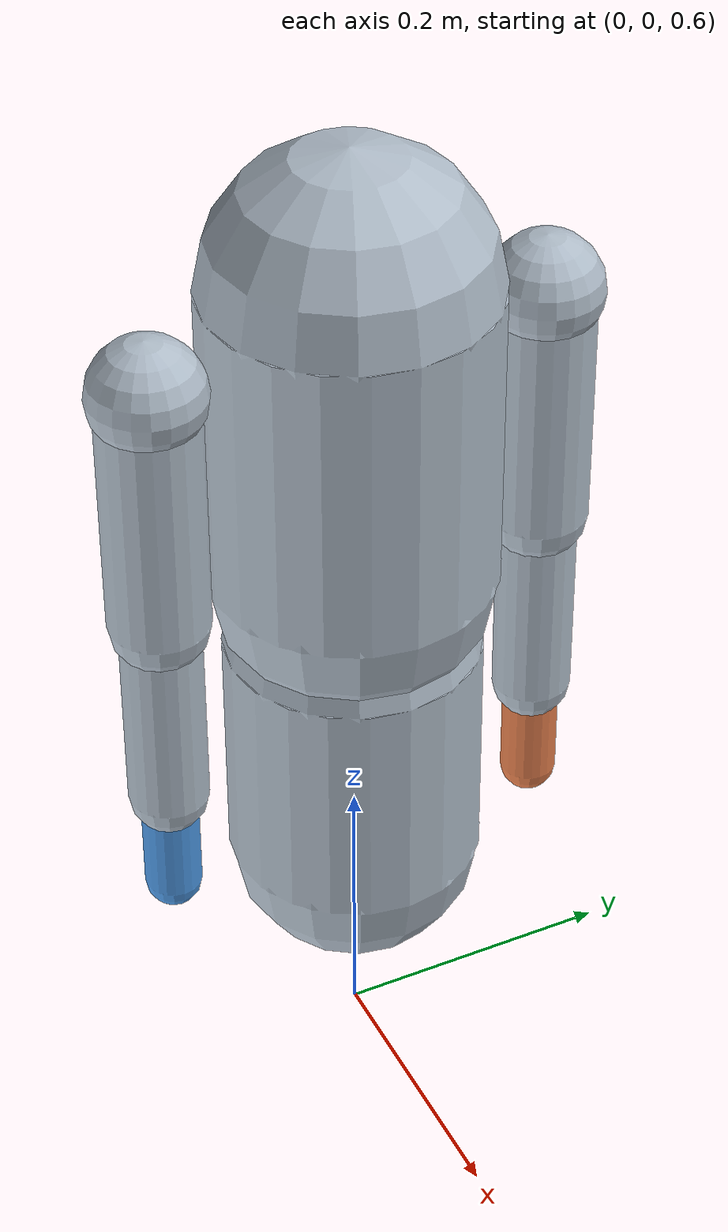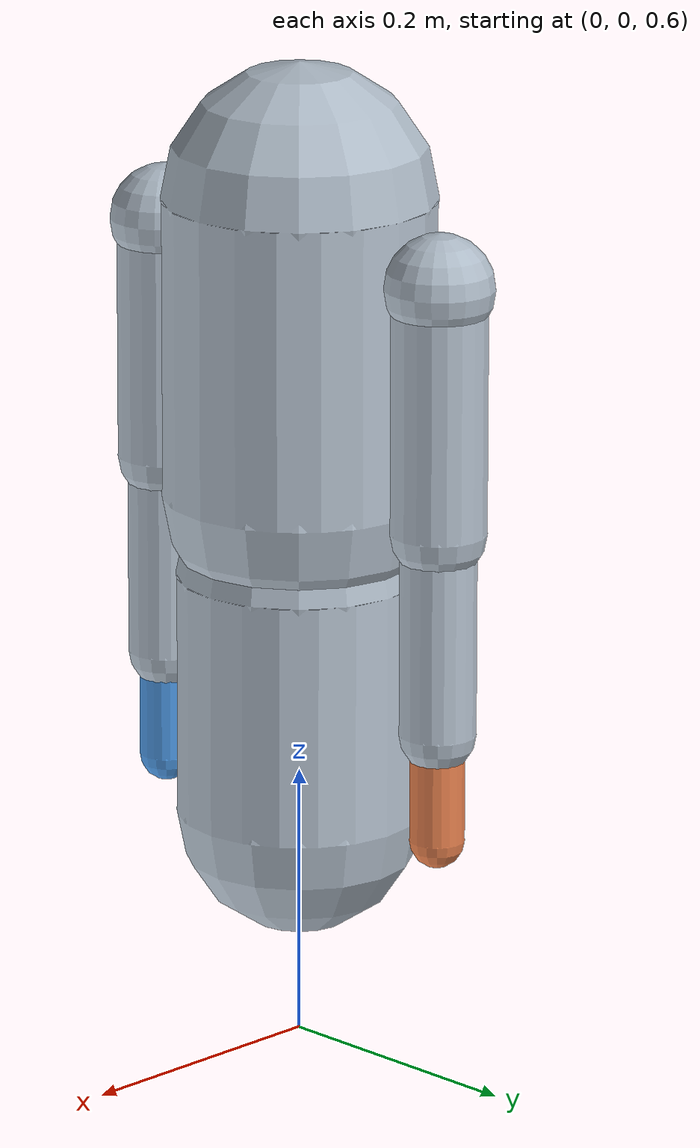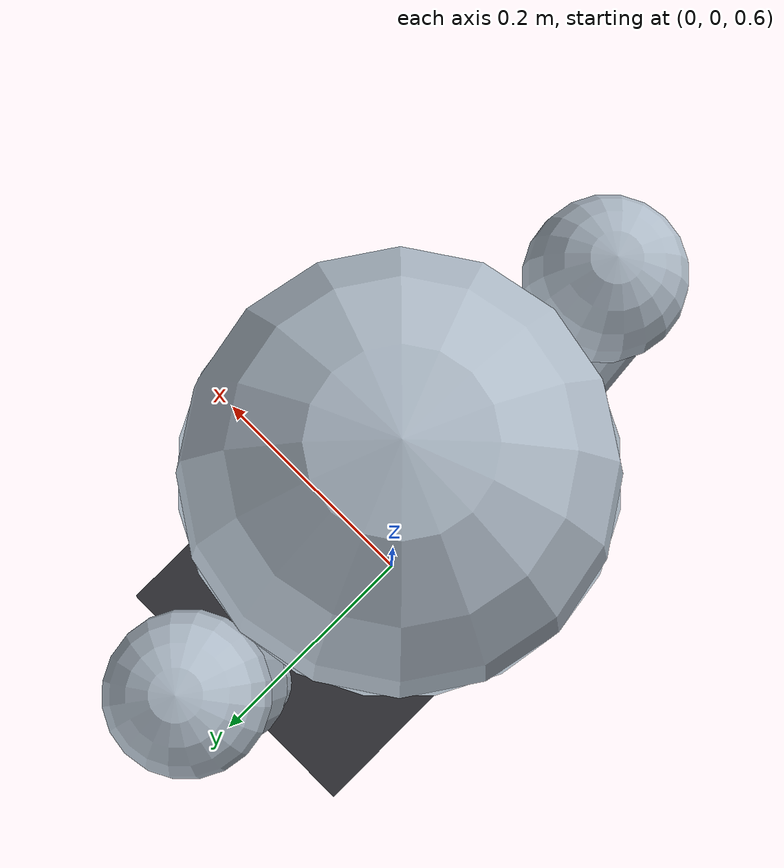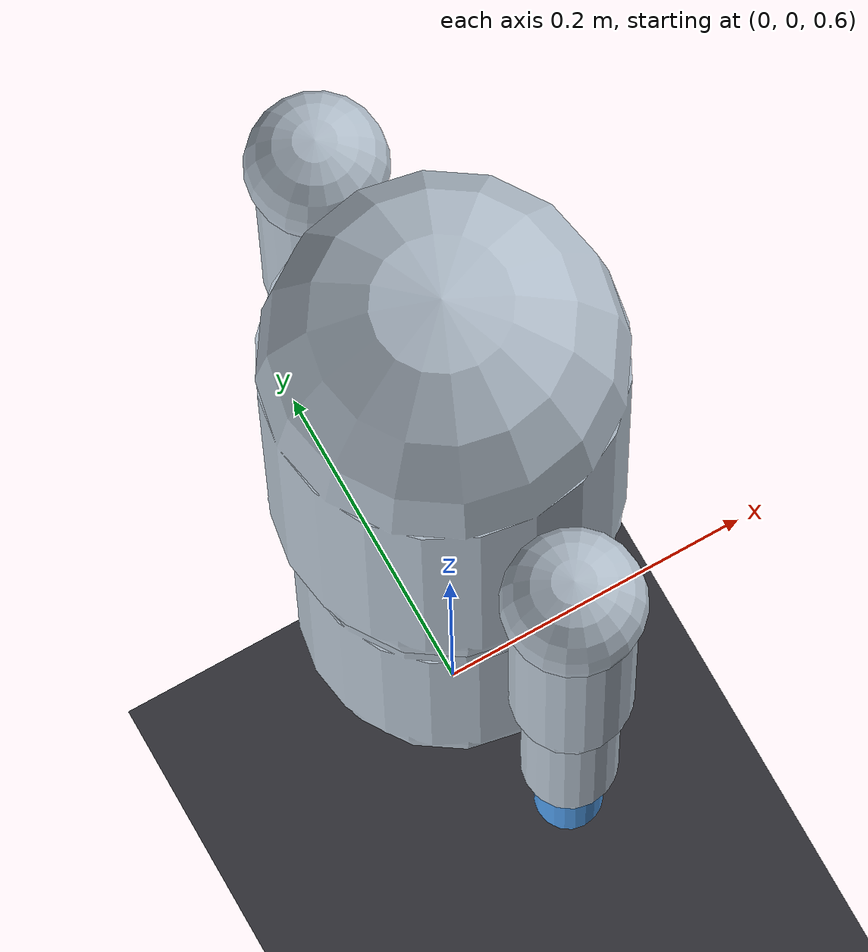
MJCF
<mujoco model="g1_upper_body_puppet">
  <compiler angle="radian" autolimits="true" inertiafromgeom="true"/>
  <option timestep="0.02" gravity="0 0 0" iterations="20"/>
  <visual>
    <headlight ambient="0.4 0.4 0.4" diffuse="0.6 0.6 0.6"/>
  </visual>
  <default>
    <joint limited="true" damping="8" armature="0.01"/>
    <geom contype="0" conaffinity="0" rgba="0.7 0.75 0.8 1" density="800"/>
  </default>
  <!-- q=0 matches Unitree G1 rest: arms hanging down (-Z), not T-pose. -->
  <worldbody>
    <light pos="0 0 2" dir="0 0 -1"/>
    <geom name="floor" type="plane" size="1 1 0.1" rgba="0.2 0.2 0.22 1" pos="0 0 0"/>
    <body name="pelvis" pos="0 0 0.85">
      <geom type="capsule" fromto="0 0 -0.08 0 0 0.10" size="0.09"/>
      <body name="waist_yaw_link">
        <joint name="waist_yaw_joint" type="hinge" axis="0 0 1" range="-1.2 1.2"/>
        <geom type="capsule" fromto="0 0 0 0 0 0.16" size="0.08"/>
        <body name="torso" pos="0 0 0.16">
          <geom type="capsule" fromto="0 0 0 0 0 0.22" size="0.10"/>
          <!-- left arm: +Y, hangs down at q=0 -->
          <body name="left_shoulder_pitch_link" pos="0 0.14 0.18">
            <joint name="left_shoulder_pitch_joint" type="hinge" axis="0 1 0" range="-3.0 2.6"/>
            <geom type="sphere" size="0.04"/>
            <body name="left_shoulder_roll_link">
              <joint name="left_shoulder_roll_joint" type="hinge" axis="1 0 0" range="-0.3 2.3"/>
              <geom type="sphere" size="0.018"/>
              <body name="left_shoulder_yaw_link">
                <joint name="left_shoulder_yaw_joint" type="hinge" axis="0 0 1" range="-2.6 2.6"/>
                <geom type="sphere" size="0.016"/>
                <geom type="capsule" fromto="0 0 0 0 0 -0.18" size="0.035"/>
                <body name="left_elbow_link" pos="0 0 -0.18">
                  <joint name="left_elbow_joint" type="hinge" axis="0 1 0" range="-1.05 2.1"/>
                  <geom type="sphere" size="0.022"/>
                  <geom type="capsule" fromto="0 0 0 0 0 -0.15" size="0.028"/>
                  <body name="left_wrist_roll_link" pos="0 0 -0.15">
                    <joint name="left_wrist_roll_joint" type="hinge" axis="0 0 1" range="-1.97 1.97"/>
                    <geom type="sphere" size="0.014"/>
                    <body name="left_wrist_pitch_link">
                      <joint name="left_wrist_pitch_joint" type="hinge" axis="0 1 0" range="-1.61 1.61"/>
                      <geom type="sphere" size="0.012"/>
                      <body name="left_wrist_yaw_link">
                        <joint name="left_wrist_yaw_joint" type="hinge" axis="1 0 0" range="-1.61 1.61"/>
                        <geom type="capsule" fromto="0 0 0 0 0 -0.08" size="0.020" rgba="0.9 0.5 0.3 1"/>
                      </body>
                    </body>
                  </body>
                </body>
              </body>
            </body>
          </body>
          <!-- right arm: -Y, hangs down at q=0 -->
          <body name="right_shoulder_pitch_link" pos="0 -0.14 0.18">
            <joint name="right_shoulder_pitch_joint" type="hinge" axis="0 1 0" range="-3.0 2.6"/>
            <geom type="sphere" size="0.04"/>
            <body name="right_shoulder_roll_link">
              <joint name="right_shoulder_roll_joint" type="hinge" axis="1 0 0" range="-2.3 0.3"/>
              <geom type="sphere" size="0.018"/>
              <body name="right_shoulder_yaw_link">
                <joint name="right_shoulder_yaw_joint" type="hinge" axis="0 0 1" range="-2.6 2.6"/>
                <geom type="sphere" size="0.016"/>
                <geom type="capsule" fromto="0 0 0 0 0 -0.18" size="0.035"/>
                <body name="right_elbow_link" pos="0 0 -0.18">
                  <joint name="right_elbow_joint" type="hinge" axis="0 1 0" range="-1.05 2.1"/>
                  <geom type="sphere" size="0.022"/>
                  <geom type="capsule" fromto="0 0 0 0 0 -0.15" size="0.028"/>
                  <body name="right_wrist_roll_link" pos="0 0 -0.15">
                    <joint name="right_wrist_roll_joint" type="hinge" axis="0 0 1" range="-1.97 1.97"/>
                    <geom type="sphere" size="0.014"/>
                    <body name="right_wrist_pitch_link">
                      <joint name="right_wrist_pitch_joint" type="hinge" axis="0 1 0" range="-1.61 1.61"/>
                      <geom type="sphere" size="0.012"/>
                      <body name="right_wrist_yaw_link">
                        <joint name="right_wrist_yaw_joint" type="hinge" axis="1 0 0" range="-1.61 1.61"/>
                        <geom type="capsule" fromto="0 0 0 0 0 -0.08" size="0.020" rgba="0.3 0.6 0.9 1"/>
                      </body>
                    </body>
                  </body>
                </body>
              </body>
            </body>
          </body>
        </body>
      </body>
    </body>
  </worldbody>
</mujoco>
